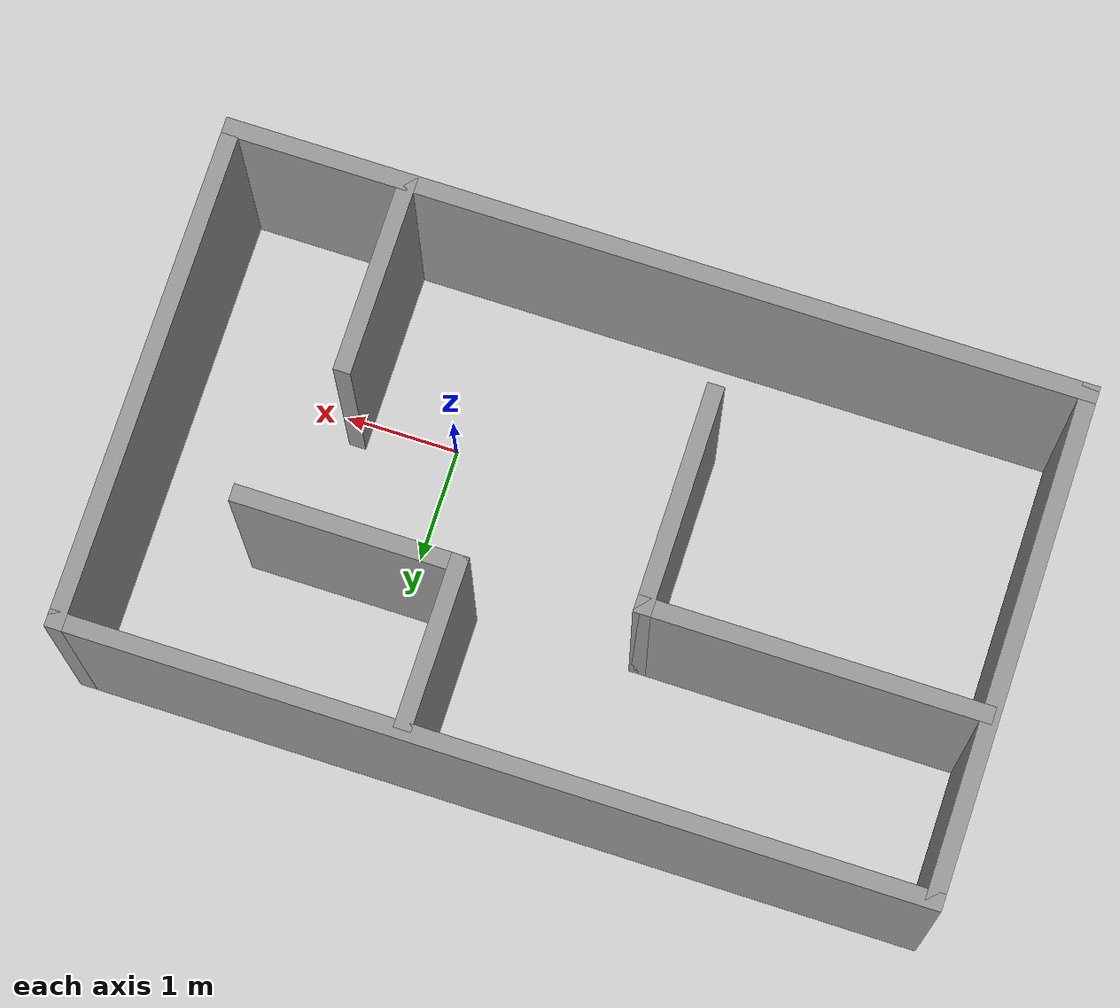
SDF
<?xml version='1.0'?>
<sdf version='1.7'>
  <model name='room'>
    <pose>-1.315 0.695 0 0 -0 0</pose>
    <link name='Wall_13'>
      <collision name='Wall_13_Collision'>
        <geometry>
          <box>
            <size>4.5 0.15 2.5</size>
          </box>
        </geometry>
        <pose>0 0 1.25 0 -0 0</pose>
      </collision>
      <visual name='Wall_13_Visual'>
        <pose>0 0 1.25 0 -0 0</pose>
        <geometry>
          <box>
            <size>4.5 0.15 2.5</size>
          </box>
        </geometry>
        <material>
          <script>
            <uri>file://media/materials/scripts/gazebo.material</uri>
            <name>Gazebo/Grey</name>
          </script>
          <ambient>1 1 1 1</ambient>
        </material>
        <meta>
          <layer>0</layer>
        </meta>
      </visual>
      <pose>3.675 0 0 0 -0 -1.5708</pose>
    </link>
    <link name='Wall_14'>
      <collision name='Wall_14_Collision'>
        <geometry>
          <box>
            <size>7.5 0.15 2.5</size>
          </box>
        </geometry>
        <pose>0 0 1.25 0 -0 0</pose>
      </collision>
      <visual name='Wall_14_Visual'>
        <pose>0 0 1.25 0 -0 0</pose>
        <geometry>
          <box>
            <size>7.5 0.15 2.5</size>
          </box>
        </geometry>
        <material>
          <script>
            <uri>file://media/materials/scripts/gazebo.material</uri>
            <name>Gazebo/Grey</name>
          </script>
          <ambient>1 1 1 1</ambient>
        </material>
        <meta>
          <layer>0</layer>
        </meta>
      </visual>
      <pose>-0 -2.175 0 0 -0 3.14159</pose>
    </link>
    <link name='Wall_16'>
      <collision name='Wall_16_Collision'>
        <geometry>
          <box>
            <size>4.5 0.15 2.5</size>
          </box>
        </geometry>
        <pose>0 0 1.25 0 -0 0</pose>
      </collision>
      <visual name='Wall_16_Visual'>
        <pose>0 0 1.25 0 -0 0</pose>
        <geometry>
          <box>
            <size>4.5 0.15 2.5</size>
          </box>
        </geometry>
        <material>
          <script>
            <uri>file://media/materials/scripts/gazebo.material</uri>
            <name>Gazebo/Grey</name>
          </script>
          <ambient>1 1 1 1</ambient>
        </material>
        <meta>
          <layer>0</layer>
        </meta>
      </visual>
      <pose>-3.675 0 0 0 -0 -1.5708</pose>
    </link>
    <link name='Wall_22'>
      <collision name='Wall_22_Collision'>
        <geometry>
          <box>
            <size>3 0.15 2.5</size>
          </box>
        </geometry>
        <pose>0 0 1.25 0 -0 0</pose>
      </collision>
      <visual name='Wall_22_Visual'>
        <pose>0 0 1.25 0 -0 0</pose>
        <geometry>
          <box>
            <size>3 0.15 2.5</size>
          </box>
        </geometry>
        <material>
          <script>
            <uri>file://media/materials/scripts/gazebo.material</uri>
            <name>Gazebo/Grey</name>
          </script>
          <ambient>1 1 1 1</ambient>
        </material>
        <meta>
          <layer>0</layer>
        </meta>
      </visual>
      <pose>-2.2 0.615 0 0 -0 0</pose>
    </link>
    <link name='Wall_23'>
      <collision name='Wall_23_Collision'>
        <geometry>
          <box>
            <size>2 0.15 2.5</size>
          </box>
        </geometry>
        <pose>0 0 1.25 0 -0 0</pose>
      </collision>
      <visual name='Wall_23_Visual'>
        <pose>0 0 1.25 0 -0 0</pose>
        <geometry>
          <box>
            <size>2 0.15 2.5</size>
          </box>
        </geometry>
        <material>
          <script>
            <uri>file://media/materials/scripts/gazebo.material</uri>
            <name>Gazebo/Grey</name>
          </script>
          <ambient>1 1 1 1</ambient>
        </material>
        <meta>
          <layer>0</layer>
        </meta>
      </visual>
      <pose>-0.775 -0.31 0 0 -0 -1.5708</pose>
    </link>
    <link name='Wall_29'>
      <collision name='Wall_29_Collision'>
        <geometry>
          <box>
            <size>1.5 0.15 2.5</size>
          </box>
        </geometry>
        <pose>0 0 1.25 0 -0 0</pose>
      </collision>
      <visual name='Wall_29_Visual'>
        <pose>0 0 1.25 0 -0 0</pose>
        <geometry>
          <box>
            <size>1.5 0.15 2.5</size>
          </box>
        </geometry>
        <material>
          <script>
            <uri>file://media/materials/scripts/gazebo.material</uri>
            <name>Gazebo/Grey</name>
          </script>
          <ambient>1 1 1 1</ambient>
        </material>
        <meta>
          <layer>0</layer>
        </meta>
      </visual>
      <pose>0.755 1.42 0 0 -0 -1.5708</pose>
    </link>
    <link name='Wall_30'>
      <collision name='Wall_30_Collision'>
        <geometry>
          <box>
            <size>2 0.15 2.5</size>
          </box>
        </geometry>
        <pose>0 0 1.25 0 -0 0</pose>
      </collision>
      <visual name='Wall_30_Visual'>
        <pose>0 0 1.25 0 -0 0</pose>
        <geometry>
          <box>
            <size>2 0.15 2.5</size>
          </box>
        </geometry>
        <material>
          <script>
            <uri>file://media/materials/scripts/gazebo.material</uri>
            <name>Gazebo/Grey</name>
          </script>
          <ambient>1 1 1 1</ambient>
        </material>
        <meta>
          <layer>0</layer>
        </meta>
      </visual>
      <pose>1.68 0.745 0 0 -0 0</pose>
    </link>
    <link name='Wall_35'>
      <collision name='Wall_35_Collision'>
        <geometry>
          <box>
            <size>1.75 0.15 2.5</size>
          </box>
        </geometry>
        <pose>0 0 1.25 0 -0 0</pose>
      </collision>
      <visual name='Wall_35_Visual'>
        <pose>0 0 1.25 0 -0 0</pose>
        <geometry>
          <box>
            <size>1.75 0.15 2.5</size>
          </box>
        </geometry>
        <material>
          <script>
            <uri>file://media/materials/scripts/gazebo.material</uri>
            <name>Gazebo/Grey</name>
          </script>
          <ambient>1 1 1 1</ambient>
        </material>
        <meta>
          <layer>0</layer>
        </meta>
      </visual>
      <pose>2.155 -1.355 0 0 -0 1.5708</pose>
    </link>
    <link name='Wall_6'>
      <collision name='Wall_6_Collision'>
        <geometry>
          <box>
            <size>7.5 0.15 2.5</size>
          </box>
        </geometry>
        <pose>0 0 1.25 0 -0 0</pose>
      </collision>
      <visual name='Wall_6_Visual'>
        <pose>0 0 1.25 0 -0 0</pose>
        <geometry>
          <box>
            <size>7.5 0.15 2.5</size>
          </box>
        </geometry>
        <material>
          <script>
            <uri>file://media/materials/scripts/gazebo.material</uri>
            <name>Gazebo/Grey</name>
          </script>
          <ambient>1 1 1 1</ambient>
        </material>
        <meta>
          <layer>0</layer>
        </meta>
      </visual>
      <pose>-0 2.175 0 0 -0 3.14159</pose>
    </link>
    <static>1</static>
  </model>
</sdf>
